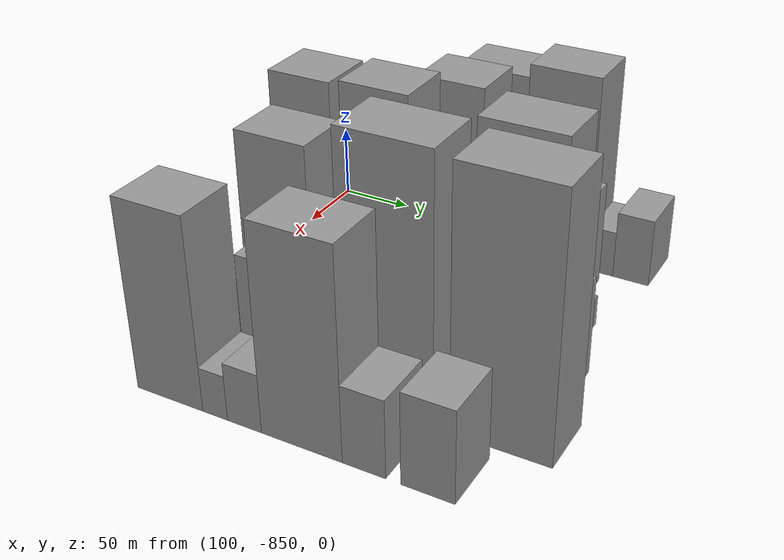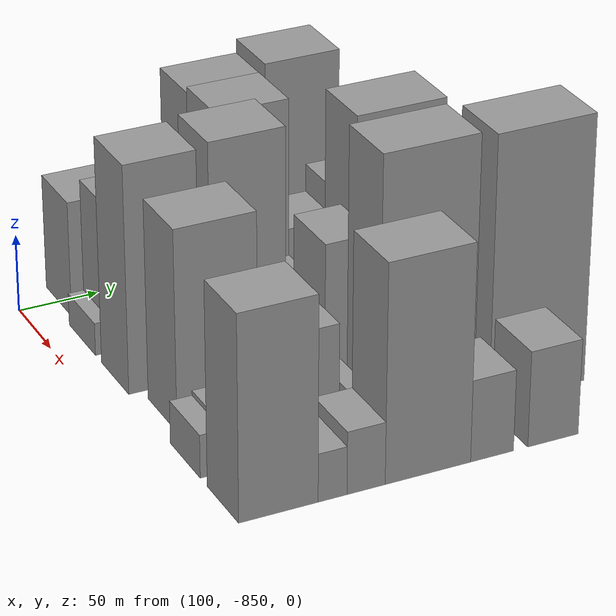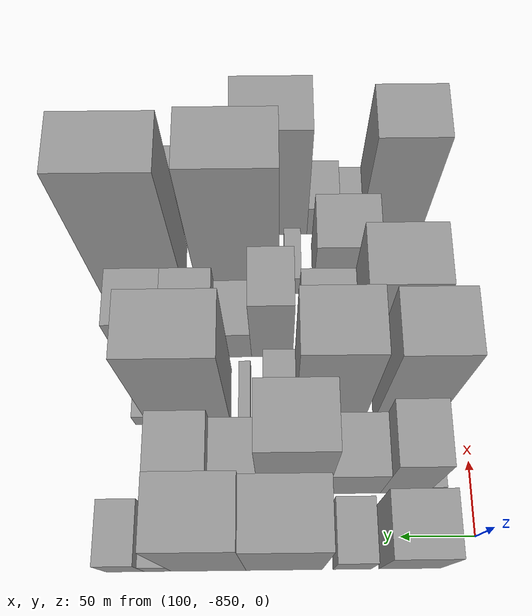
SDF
<sdf version="1.6">
 <world name="default">
  <model name="building_1">
   <static>1</static>
   <pose>100.0000 -804.8391 0 0.000000 0.000000 0.000000</pose>
   <link name="link">
    <pose>0 0 37.50 0 0 0</pose>
    <collision name="collision"><geometry><box><size>40.0000 40.3217 75.0000</size></box></geometry></collision>
    <visual name="visual">
     <cast_shadows>0</cast_shadows>
     <geometry><box><size>40.0000 40.3217 75.0000</size></box></geometry>
     <material>
      <script>
       <uri>model://grey_wall/materials/scripts</uri>
       <uri>model://grey_wall/materials/textures</uri>
       <name>vrc/grey_wall</name>
      </script>
     </material>
    </visual>
   </link>
  </model>
  <model name="building_2">
   <static>1</static>
   <pose>100.0000 -767.2053 0 0.000000 0.000000 0.000000</pose>
   <link name="link">
    <pose>0 0 24.00 0 0 0</pose>
    <collision name="collision"><geometry><box><size>40.0000 24.9459 48.0000</size></box></geometry></collision>
    <visual name="visual">
     <cast_shadows>0</cast_shadows>
     <geometry><box><size>40.0000 24.9459 48.0000</size></box></geometry>
     <material>
      <script>
       <uri>model://grey_wall/materials/scripts</uri>
       <uri>model://grey_wall/materials/textures</uri>
       <name>vrc/grey_wall</name>
      </script>
     </material>
    </visual>
   </link>
  </model>
  <model name="building_3">
   <static>1</static>
   <pose>100.0000 -722.9092 0 0.000000 0.000000 0.000000</pose>
   <link name="link">
    <pose>0 0 64.50 0 0 0</pose>
    <collision name="collision"><geometry><box><size>40.0000 49.6463 129.0000</size></box></geometry></collision>
    <visual name="visual">
     <cast_shadows>0</cast_shadows>
     <geometry><box><size>40.0000 49.6463 129.0000</size></box></geometry>
     <material>
      <script>
       <uri>model://grey_wall/materials/scripts</uri>
       <uri>model://grey_wall/materials/textures</uri>
       <name>vrc/grey_wall</name>
      </script>
     </material>
    </visual>
   </link>
  </model>
  <model name="building_4">
   <static>1</static>
   <pose>100.0000 -673.7390 0 0.000000 0.000000 0.000000</pose>
   <link name="link">
    <pose>0 0 69.00 0 0 0</pose>
    <collision name="collision"><geometry><box><size>40.0000 48.6941 138.0000</size></box></geometry></collision>
    <visual name="visual">
     <cast_shadows>0</cast_shadows>
     <geometry><box><size>40.0000 48.6941 138.0000</size></box></geometry>
     <material>
      <script>
       <uri>model://grey_wall/materials/scripts</uri>
       <uri>model://grey_wall/materials/textures</uri>
       <name>vrc/grey_wall</name>
      </script>
     </material>
    </visual>
   </link>
  </model>
  <model name="building_5">
   <static>1</static>
   <pose>100.0000 -640.6118 0 0.000000 0.000000 0.000000</pose>
   <link name="link">
    <pose>0 0 16.50 0 0 0</pose>
    <collision name="collision"><geometry><box><size>40.0000 17.5602 33.0000</size></box></geometry></collision>
    <visual name="visual">
     <cast_shadows>0</cast_shadows>
     <geometry><box><size>40.0000 17.5602 33.0000</size></box></geometry>
     <material>
      <script>
       <uri>model://grey_wall/materials/scripts</uri>
       <uri>model://grey_wall/materials/textures</uri>
       <name>vrc/grey_wall</name>
      </script>
     </material>
    </visual>
   </link>
  </model>
  <model name="building_6">
   <static>1</static>
   <pose>100.0000 -619.4572 0 0.000000 0.000000 0.000000</pose>
   <link name="link">
    <pose>0 0 24.00 0 0 0</pose>
    <collision name="collision"><geometry><box><size>40.0000 24.7491 48.0000</size></box></geometry></collision>
    <visual name="visual">
     <cast_shadows>0</cast_shadows>
     <geometry><box><size>40.0000 24.7491 48.0000</size></box></geometry>
     <material>
      <script>
       <uri>model://grey_wall/materials/scripts</uri>
       <uri>model://grey_wall/materials/textures</uri>
       <name>vrc/grey_wall</name>
      </script>
     </material>
    </visual>
   </link>
  </model>
  <model name="building_49">
   <static>1</static>
   <pose>149.0000 -825.1503 0 0.000000 0.000000 0.000000</pose>
   <link name="link">
    <pose>0 0 10.50 0 0 0</pose>
    <collision name="collision"><geometry><box><size>40.0000 9.6994 21.0000</size></box></geometry></collision>
    <visual name="visual">
     <cast_shadows>0</cast_shadows>
     <geometry><box><size>40.0000 9.6994 21.0000</size></box></geometry>
     <material>
      <script>
       <uri>model://grey_wall/materials/scripts</uri>
       <uri>model://grey_wall/materials/textures</uri>
       <name>vrc/grey_wall</name>
      </script>
     </material>
    </visual>
   </link>
  </model>
  <model name="building_50">
   <static>1</static>
   <pose>149.0000 -804.3308 0 0.000000 0.000000 0.000000</pose>
   <link name="link">
    <pose>0 0 46.50 0 0 0</pose>
    <collision name="collision"><geometry><box><size>40.0000 31.9397 93.0000</size></box></geometry></collision>
    <visual name="visual">
     <cast_shadows>0</cast_shadows>
     <geometry><box><size>40.0000 31.9397 93.0000</size></box></geometry>
     <material>
      <script>
       <uri>model://grey_wall/materials/scripts</uri>
       <uri>model://grey_wall/materials/textures</uri>
       <name>vrc/grey_wall</name>
      </script>
     </material>
    </visual>
   </link>
  </model>
  <model name="building_51">
   <static>1</static>
   <pose>149.0000 -770.3439 0 0.000000 0.000000 0.000000</pose>
   <link name="link">
    <pose>0 0 31.50 0 0 0</pose>
    <collision name="collision"><geometry><box><size>40.0000 36.0341 63.0000</size></box></geometry></collision>
    <visual name="visual">
     <cast_shadows>0</cast_shadows>
     <geometry><box><size>40.0000 36.0341 63.0000</size></box></geometry>
     <material>
      <script>
       <uri>model://grey_wall/materials/scripts</uri>
       <uri>model://grey_wall/materials/textures</uri>
       <name>vrc/grey_wall</name>
      </script>
     </material>
    </visual>
   </link>
  </model>
  <model name="building_52">
   <static>1</static>
   <pose>149.0000 -729.2863 0 0.000000 0.000000 0.000000</pose>
   <link name="link">
    <pose>0 0 69.00 0 0 0</pose>
    <collision name="collision"><geometry><box><size>40.0000 46.0811 138.0000</size></box></geometry></collision>
    <visual name="visual">
     <cast_shadows>0</cast_shadows>
     <geometry><box><size>40.0000 46.0811 138.0000</size></box></geometry>
     <material>
      <script>
       <uri>model://grey_wall/materials/scripts</uri>
       <uri>model://grey_wall/materials/textures</uri>
       <name>vrc/grey_wall</name>
      </script>
     </material>
    </visual>
   </link>
  </model>
  <model name="building_53">
   <static>1</static>
   <pose>149.0000 -691.0314 0 0.000000 0.000000 0.000000</pose>
   <link name="link">
    <pose>0 0 27.00 0 0 0</pose>
    <collision name="collision"><geometry><box><size>40.0000 30.4288 54.0000</size></box></geometry></collision>
    <visual name="visual">
     <cast_shadows>0</cast_shadows>
     <geometry><box><size>40.0000 30.4288 54.0000</size></box></geometry>
     <material>
      <script>
       <uri>model://grey_wall/materials/scripts</uri>
       <uri>model://grey_wall/materials/textures</uri>
       <name>vrc/grey_wall</name>
      </script>
     </material>
    </visual>
   </link>
  </model>
  <model name="building_54">
   <static>1</static>
   <pose>149.0000 -656.9483 0 0.000000 0.000000 0.000000</pose>
   <link name="link">
    <pose>0 0 36.00 0 0 0</pose>
    <collision name="collision"><geometry><box><size>40.0000 37.7373 72.0000</size></box></geometry></collision>
    <visual name="visual">
     <cast_shadows>0</cast_shadows>
     <geometry><box><size>40.0000 37.7373 72.0000</size></box></geometry>
     <material>
      <script>
       <uri>model://grey_wall/materials/scripts</uri>
       <uri>model://grey_wall/materials/textures</uri>
       <name>vrc/grey_wall</name>
      </script>
     </material>
    </visual>
   </link>
  </model>
  <model name="building_94">
   <static>1</static>
   <pose>198.0000 -808.0997 0 0.000000 0.000000 0.000000</pose>
   <link name="link">
    <pose>0 0 72.00 0 0 0</pose>
    <collision name="collision"><geometry><box><size>40.0000 43.8005 144.0000</size></box></geometry></collision>
    <visual name="visual">
     <cast_shadows>0</cast_shadows>
     <geometry><box><size>40.0000 43.8005 144.0000</size></box></geometry>
     <material>
      <script>
       <uri>model://grey_wall/materials/scripts</uri>
       <uri>model://grey_wall/materials/textures</uri>
       <name>vrc/grey_wall</name>
      </script>
     </material>
    </visual>
   </link>
  </model>
  <model name="building_95">
   <static>1</static>
   <pose>198.0000 -755.5193 0 0.000000 0.000000 0.000000</pose>
   <link name="link">
    <pose>0 0 73.50 0 0 0</pose>
    <collision name="collision"><geometry><box><size>40.0000 47.3603 147.0000</size></box></geometry></collision>
    <visual name="visual">
     <cast_shadows>0</cast_shadows>
     <geometry><box><size>40.0000 47.3603 147.0000</size></box></geometry>
     <material>
      <script>
       <uri>model://grey_wall/materials/scripts</uri>
       <uri>model://grey_wall/materials/textures</uri>
       <name>vrc/grey_wall</name>
      </script>
     </material>
    </visual>
   </link>
  </model>
  <model name="building_96">
   <static>1</static>
   <pose>198.0000 -721.0530 0 0.000000 0.000000 0.000000</pose>
   <link name="link">
    <pose>0 0 21.00 0 0 0</pose>
    <collision name="collision"><geometry><box><size>40.0000 21.5724 42.0000</size></box></geometry></collision>
    <visual name="visual">
     <cast_shadows>0</cast_shadows>
     <geometry><box><size>40.0000 21.5724 42.0000</size></box></geometry>
     <material>
      <script>
       <uri>model://grey_wall/materials/scripts</uri>
       <uri>model://grey_wall/materials/textures</uri>
       <name>vrc/grey_wall</name>
      </script>
     </material>
    </visual>
   </link>
  </model>
  <model name="building_97">
   <static>1</static>
   <pose>198.0000 -697.2040 0 0.000000 0.000000 0.000000</pose>
   <link name="link">
    <pose>0 0 9.00 0 0 0</pose>
    <collision name="collision"><geometry><box><size>40.0000 8.1257 18.0000</size></box></geometry></collision>
    <visual name="visual">
     <cast_shadows>0</cast_shadows>
     <geometry><box><size>40.0000 8.1257 18.0000</size></box></geometry>
     <material>
      <script>
       <uri>model://grey_wall/materials/scripts</uri>
       <uri>model://grey_wall/materials/textures</uri>
       <name>vrc/grey_wall</name>
      </script>
     </material>
    </visual>
   </link>
  </model>
  <model name="building_98">
   <static>1</static>
   <pose>198.0000 -658.5520 0 0.000000 0.000000 0.000000</pose>
   <link name="link">
    <pose>0 0 72.00 0 0 0</pose>
    <collision name="collision"><geometry><box><size>40.0000 57.1782 144.0000</size></box></geometry></collision>
    <visual name="visual">
     <cast_shadows>0</cast_shadows>
     <geometry><box><size>40.0000 57.1782 144.0000</size></box></geometry>
     <material>
      <script>
       <uri>model://grey_wall/materials/scripts</uri>
       <uri>model://grey_wall/materials/textures</uri>
       <name>vrc/grey_wall</name>
      </script>
     </material>
    </visual>
   </link>
  </model>
  <model name="building_99">
   <static>1</static>
   <pose>198.0000 -625.5107 0 0.000000 0.000000 0.000000</pose>
   <link name="link">
    <pose>0 0 10.50 0 0 0</pose>
    <collision name="collision"><geometry><box><size>40.0000 8.9044 21.0000</size></box></geometry></collision>
    <visual name="visual">
     <cast_shadows>0</cast_shadows>
     <geometry><box><size>40.0000 8.9044 21.0000</size></box></geometry>
     <material>
      <script>
       <uri>model://grey_wall/materials/scripts</uri>
       <uri>model://grey_wall/materials/textures</uri>
       <name>vrc/grey_wall</name>
      </script>
     </material>
    </visual>
   </link>
  </model>
  <model name="building_145">
   <static>1</static>
   <pose>247.0000 -797.3439 0 0.000000 0.000000 0.000000</pose>
   <link name="link">
    <pose>0 0 63.00 0 0 0</pose>
    <collision name="collision"><geometry><box><size>40.0000 49.3121 126.0000</size></box></geometry></collision>
    <visual name="visual">
     <cast_shadows>0</cast_shadows>
     <geometry><box><size>40.0000 49.3121 126.0000</size></box></geometry>
     <material>
      <script>
       <uri>model://grey_wall/materials/scripts</uri>
       <uri>model://grey_wall/materials/textures</uri>
       <name>vrc/grey_wall</name>
      </script>
     </material>
    </visual>
   </link>
  </model>
  <model name="building_146">
   <static>1</static>
   <pose>247.0000 -754.3686 0 0.000000 0.000000 0.000000</pose>
   <link name="link">
    <pose>0 0 31.50 0 0 0</pose>
    <collision name="collision"><geometry><box><size>40.0000 36.6385 63.0000</size></box></geometry></collision>
    <visual name="visual">
     <cast_shadows>0</cast_shadows>
     <geometry><box><size>40.0000 36.6385 63.0000</size></box></geometry>
     <material>
      <script>
       <uri>model://grey_wall/materials/scripts</uri>
       <uri>model://grey_wall/materials/textures</uri>
       <name>vrc/grey_wall</name>
      </script>
     </material>
    </visual>
   </link>
  </model>
  <model name="building_147">
   <static>1</static>
   <pose>247.0000 -716.3079 0 0.000000 0.000000 0.000000</pose>
   <link name="link">
    <pose>0 0 48.00 0 0 0</pose>
    <collision name="collision"><geometry><box><size>40.0000 29.4830 96.0000</size></box></geometry></collision>
    <visual name="visual">
     <cast_shadows>0</cast_shadows>
     <geometry><box><size>40.0000 29.4830 96.0000</size></box></geometry>
     <material>
      <script>
       <uri>model://grey_wall/materials/scripts</uri>
       <uri>model://grey_wall/materials/textures</uri>
       <name>vrc/grey_wall</name>
      </script>
     </material>
    </visual>
   </link>
  </model>
  <model name="building_148">
   <static>1</static>
   <pose>247.0000 -689.1758 0 0.000000 0.000000 0.000000</pose>
   <link name="link">
    <pose>0 0 22.50 0 0 0</pose>
    <collision name="collision"><geometry><box><size>40.0000 24.7811 45.0000</size></box></geometry></collision>
    <visual name="visual">
     <cast_shadows>0</cast_shadows>
     <geometry><box><size>40.0000 24.7811 45.0000</size></box></geometry>
     <material>
      <script>
       <uri>model://grey_wall/materials/scripts</uri>
       <uri>model://grey_wall/materials/textures</uri>
       <name>vrc/grey_wall</name>
      </script>
     </material>
    </visual>
   </link>
  </model>
  <model name="building_149">
   <static>1</static>
   <pose>247.0000 -659.6586 0 0.000000 0.000000 0.000000</pose>
   <link name="link">
    <pose>0 0 33.00 0 0 0</pose>
    <collision name="collision"><geometry><box><size>40.0000 34.2533 66.0000</size></box></geometry></collision>
    <visual name="visual">
     <cast_shadows>0</cast_shadows>
     <geometry><box><size>40.0000 34.2533 66.0000</size></box></geometry>
     <material>
      <script>
       <uri>model://grey_wall/materials/scripts</uri>
       <uri>model://grey_wall/materials/textures</uri>
       <name>vrc/grey_wall</name>
      </script>
     </material>
    </visual>
   </link>
  </model>
  <model name="building_150">
   <static>1</static>
   <pose>247.0000 -624.3403 0 0.000000 0.000000 0.000000</pose>
   <link name="link">
    <pose>0 0 33.00 0 0 0</pose>
    <collision name="collision"><geometry><box><size>40.0000 36.3832 66.0000</size></box></geometry></collision>
    <visual name="visual">
     <cast_shadows>0</cast_shadows>
     <geometry><box><size>40.0000 36.3832 66.0000</size></box></geometry>
     <material>
      <script>
       <uri>model://grey_wall/materials/scripts</uri>
       <uri>model://grey_wall/materials/textures</uri>
       <name>vrc/grey_wall</name>
      </script>
     </material>
    </visual>
   </link>
  </model>
  <model name="building_200">
   <static>1</static>
   <pose>296.0000 -823.2537 0 0.000000 0.000000 0.000000</pose>
   <link name="link">
    <pose>0 0 13.50 0 0 0</pose>
    <collision name="collision"><geometry><box><size>40.0000 13.4927 27.0000</size></box></geometry></collision>
    <visual name="visual">
     <cast_shadows>0</cast_shadows>
     <geometry><box><size>40.0000 13.4927 27.0000</size></box></geometry>
     <material>
      <script>
       <uri>model://grey_wall/materials/scripts</uri>
       <uri>model://grey_wall/materials/textures</uri>
       <name>vrc/grey_wall</name>
      </script>
     </material>
    </visual>
   </link>
  </model>
  <model name="building_201">
   <static>1</static>
   <pose>296.0000 -807.9969 0 0.000000 0.000000 0.000000</pose>
   <link name="link">
    <pose>0 0 15.00 0 0 0</pose>
    <collision name="collision"><geometry><box><size>40.0000 17.0209 30.0000</size></box></geometry></collision>
    <visual name="visual">
     <cast_shadows>0</cast_shadows>
     <geometry><box><size>40.0000 17.0209 30.0000</size></box></geometry>
     <material>
      <script>
       <uri>model://grey_wall/materials/scripts</uri>
       <uri>model://grey_wall/materials/textures</uri>
       <name>vrc/grey_wall</name>
      </script>
     </material>
    </visual>
   </link>
  </model>
  <model name="building_202">
   <static>1</static>
   <pose>296.0000 -768.5908 0 0.000000 0.000000 0.000000</pose>
   <link name="link">
    <pose>0 0 37.50 0 0 0</pose>
    <collision name="collision"><geometry><box><size>40.0000 43.7914 75.0000</size></box></geometry></collision>
    <visual name="visual">
     <cast_shadows>0</cast_shadows>
     <geometry><box><size>40.0000 43.7914 75.0000</size></box></geometry>
     <material>
      <script>
       <uri>model://grey_wall/materials/scripts</uri>
       <uri>model://grey_wall/materials/textures</uri>
       <name>vrc/grey_wall</name>
      </script>
     </material>
    </visual>
   </link>
  </model>
  <model name="building_203">
   <static>1</static>
   <pose>296.0000 -731.6999 0 0.000000 0.000000 0.000000</pose>
   <link name="link">
    <pose>0 0 13.50 0 0 0</pose>
    <collision name="collision"><geometry><box><size>40.0000 11.9903 27.0000</size></box></geometry></collision>
    <visual name="visual">
     <cast_shadows>0</cast_shadows>
     <geometry><box><size>40.0000 11.9903 27.0000</size></box></geometry>
     <material>
      <script>
       <uri>model://grey_wall/materials/scripts</uri>
       <uri>model://grey_wall/materials/textures</uri>
       <name>vrc/grey_wall</name>
      </script>
     </material>
    </visual>
   </link>
  </model>
  <model name="building_204">
   <static>1</static>
   <pose>296.0000 -692.1626 0 0.000000 0.000000 0.000000</pose>
   <link name="link">
    <pose>0 0 85.50 0 0 0</pose>
    <collision name="collision"><geometry><box><size>40.0000 59.0845 171.0000</size></box></geometry></collision>
    <visual name="visual">
     <cast_shadows>0</cast_shadows>
     <geometry><box><size>40.0000 59.0845 171.0000</size></box></geometry>
     <material>
      <script>
       <uri>model://grey_wall/materials/scripts</uri>
       <uri>model://grey_wall/materials/textures</uri>
       <name>vrc/grey_wall</name>
      </script>
     </material>
    </visual>
   </link>
  </model>
  <model name="building_205">
   <static>1</static>
   <pose>296.0000 -621.8598 0 0.000000 0.000000 0.000000</pose>
   <link name="link">
    <pose>0 0 84.00 0 0 0</pose>
    <collision name="collision"><geometry><box><size>40.0000 61.5211 168.0000</size></box></geometry></collision>
    <visual name="visual">
     <cast_shadows>0</cast_shadows>
     <geometry><box><size>40.0000 61.5211 168.0000</size></box></geometry>
     <material>
      <script>
       <uri>model://grey_wall/materials/scripts</uri>
       <uri>model://grey_wall/materials/textures</uri>
       <name>vrc/grey_wall</name>
      </script>
     </material>
    </visual>
   </link>
  </model>
  <model name="building_245">
   <static>1</static>
   <pose>345.0000 -806.7340 0 0.000000 0.000000 0.000000</pose>
   <link name="link">
    <pose>0 0 63.00 0 0 0</pose>
    <collision name="collision"><geometry><box><size>40.0000 46.5320 126.0000</size></box></geometry></collision>
    <visual name="visual">
     <cast_shadows>0</cast_shadows>
     <geometry><box><size>40.0000 46.5320 126.0000</size></box></geometry>
     <material>
      <script>
       <uri>model://grey_wall/materials/scripts</uri>
       <uri>model://grey_wall/materials/textures</uri>
       <name>vrc/grey_wall</name>
      </script>
     </material>
    </visual>
   </link>
  </model>
  <model name="building_246">
   <static>1</static>
   <pose>345.0000 -774.9046 0 0.000000 0.000000 0.000000</pose>
   <link name="link">
    <pose>0 0 15.00 0 0 0</pose>
    <collision name="collision"><geometry><box><size>40.0000 17.1268 30.0000</size></box></geometry></collision>
    <visual name="visual">
     <cast_shadows>0</cast_shadows>
     <geometry><box><size>40.0000 17.1268 30.0000</size></box></geometry>
     <material>
      <script>
       <uri>model://grey_wall/materials/scripts</uri>
       <uri>model://grey_wall/materials/textures</uri>
       <name>vrc/grey_wall</name>
      </script>
     </material>
    </visual>
   </link>
  </model>
  <model name="building_247">
   <static>1</static>
   <pose>345.0000 -754.8859 0 0.000000 0.000000 0.000000</pose>
   <link name="link">
    <pose>0 0 19.50 0 0 0</pose>
    <collision name="collision"><geometry><box><size>40.0000 22.9105 39.0000</size></box></geometry></collision>
    <visual name="visual">
     <cast_shadows>0</cast_shadows>
     <geometry><box><size>40.0000 22.9105 39.0000</size></box></geometry>
     <material>
      <script>
       <uri>model://grey_wall/materials/scripts</uri>
       <uri>model://grey_wall/materials/textures</uri>
       <name>vrc/grey_wall</name>
      </script>
     </material>
    </visual>
   </link>
  </model>
  <model name="building_248">
   <static>1</static>
   <pose>345.0000 -717.3713 0 0.000000 0.000000 0.000000</pose>
   <link name="link">
    <pose>0 0 67.50 0 0 0</pose>
    <collision name="collision"><geometry><box><size>40.0000 52.1188 135.0000</size></box></geometry></collision>
    <visual name="visual">
     <cast_shadows>0</cast_shadows>
     <geometry><box><size>40.0000 52.1188 135.0000</size></box></geometry>
     <material>
      <script>
       <uri>model://grey_wall/materials/scripts</uri>
       <uri>model://grey_wall/materials/textures</uri>
       <name>vrc/grey_wall</name>
      </script>
     </material>
    </visual>
   </link>
  </model>
  <model name="building_249">
   <static>1</static>
   <pose>345.0000 -677.9812 0 0.000000 0.000000 0.000000</pose>
   <link name="link">
    <pose>0 0 25.50 0 0 0</pose>
    <collision name="collision"><geometry><box><size>40.0000 26.6615 51.0000</size></box></geometry></collision>
    <visual name="visual">
     <cast_shadows>0</cast_shadows>
     <geometry><box><size>40.0000 26.6615 51.0000</size></box></geometry>
     <material>
      <script>
       <uri>model://grey_wall/materials/scripts</uri>
       <uri>model://grey_wall/materials/textures</uri>
       <name>vrc/grey_wall</name>
      </script>
     </material>
    </visual>
   </link>
  </model>
  <model name="building_250">
   <static>1</static>
   <pose>345.0000 -639.7351 0 0.000000 0.000000 0.000000</pose>
   <link name="link">
    <pose>0 0 30.00 0 0 0</pose>
    <collision name="collision"><geometry><box><size>40.0000 31.8307 60.0000</size></box></geometry></collision>
    <visual name="visual">
     <cast_shadows>0</cast_shadows>
     <geometry><box><size>40.0000 31.8307 60.0000</size></box></geometry>
     <material>
      <script>
       <uri>model://grey_wall/materials/scripts</uri>
       <uri>model://grey_wall/materials/textures</uri>
       <name>vrc/grey_wall</name>
      </script>
     </material>
    </visual>
   </link>
  </model>
 </world>
</sdf>
